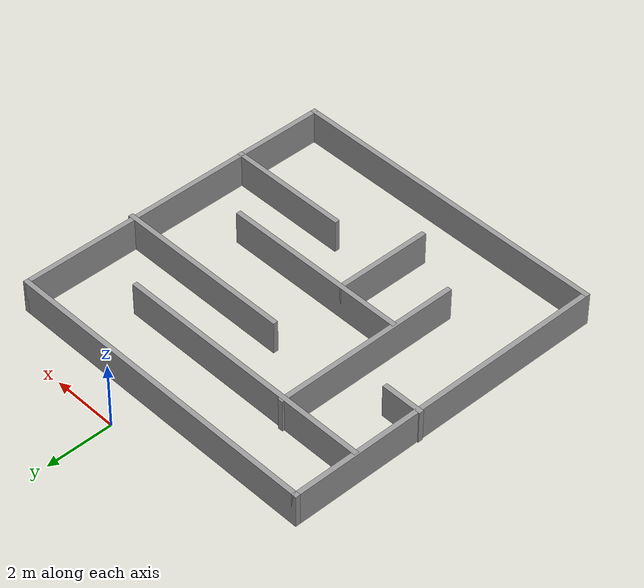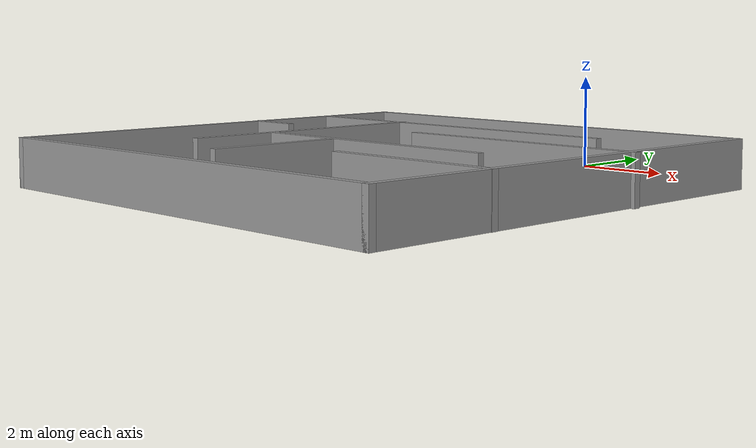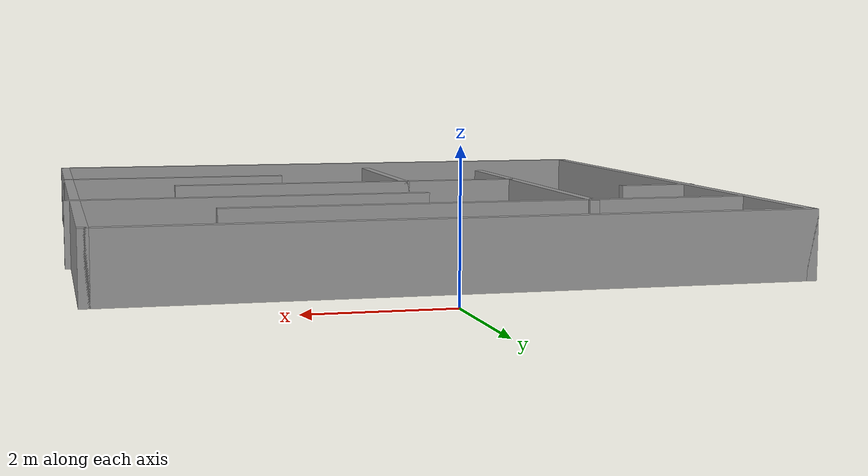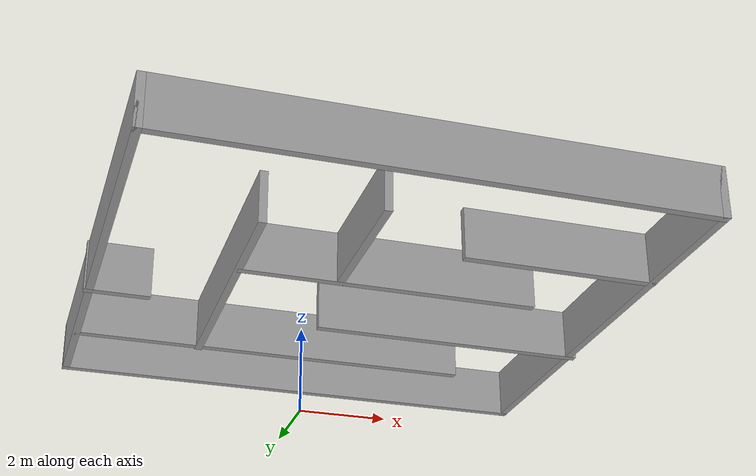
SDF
<?xml version='1.0'?>
<sdf version='1.6'>
  <model name='maze'>
    <pose frame=''>-0.406 -6.018 0 0 -0 0</pose>
    <link name='Wall_0'>
      <collision name='Wall_0_Collision'>
        <geometry>
          <box>
            <size>10 0.15 1</size>
          </box>
        </geometry>
        <pose frame=''>0 0 0.5 0 -0 0</pose>
      </collision>
      <visual name='Wall_0_Visual'>
        <pose frame=''>0 0 0.5 0 -0 0</pose>
        <geometry>
          <box>
            <size>10 0.15 1</size>
          </box>
        </geometry>
        <material>
          <script>
            <uri>file://media/materials/scripts/gazebo.material</uri>
            <name>Gazebo/Grey</name>
          </script>
          <ambient>1 1 1 1</ambient>
        </material>
        <meta>
          <layer>0</layer>
        </meta>
      </visual>
      <pose frame=''>-0.027 4.925 0 0 -0 0</pose>
    </link>
    <link name='Wall_13'>
      <collision name='Wall_13_Collision'>
        <geometry>
          <box>
            <size>5.5 0.15 1</size>
          </box>
        </geometry>
        <pose frame=''>0 0 0.5 0 -0 0</pose>
      </collision>
      <visual name='Wall_13_Visual'>
        <pose frame=''>0 0 0.5 0 -0 0</pose>
        <geometry>
          <box>
            <size>5.5 0.15 1</size>
          </box>
        </geometry>
        <material>
          <script>
            <uri>file://media/materials/scripts/gazebo.material</uri>
            <name>Gazebo/Grey</name>
          </script>
          <ambient>1 1 1 1</ambient>
        </material>
        <meta>
          <layer>0</layer>
        </meta>
      </visual>
      <pose frame=''>2.308 1.405 0 0 -0 3.14159</pose>
    </link>
    <link name='Wall_15'>
      <collision name='Wall_15_Collision'>
        <geometry>
          <box>
            <size>5.75 0.15 1</size>
          </box>
        </geometry>
        <pose frame=''>0 0 0.5 0 -0 0</pose>
      </collision>
      <visual name='Wall_15_Visual'>
        <pose frame=''>0 0 0.5 0 -0 0</pose>
        <geometry>
          <box>
            <size>5.75 0.15 1</size>
          </box>
        </geometry>
        <material>
          <script>
            <uri>file://media/materials/scripts/gazebo.material</uri>
            <name>Gazebo/Grey</name>
          </script>
          <ambient>1 1 1 1</ambient>
        </material>
        <meta>
          <layer>0</layer>
        </meta>
      </visual>
      <pose frame=''>-2.487 0.269 0 0 -0 -1.5708</pose>
    </link>
    <link name='Wall_17'>
      <collision name='Wall_17_Collision'>
        <geometry>
          <box>
            <size>5.75 0.15 1</size>
          </box>
        </geometry>
        <pose frame=''>0 0 0.5 0 -0 0</pose>
      </collision>
      <visual name='Wall_17_Visual'>
        <pose frame=''>0 0 0.5 0 -0 0</pose>
        <geometry>
          <box>
            <size>5.75 0.15 1</size>
          </box>
        </geometry>
        <material>
          <script>
            <uri>file://media/materials/scripts/gazebo.material</uri>
            <name>Gazebo/Grey</name>
          </script>
          <ambient>1 1 1 1</ambient>
        </material>
        <meta>
          <layer>0</layer>
        </meta>
      </visual>
      <pose frame=''>0.373 -0.682 0 0 -0 0</pose>
    </link>
    <link name='Wall_19'>
      <collision name='Wall_19_Collision'>
        <geometry>
          <box>
            <size>3 0.15 1</size>
          </box>
        </geometry>
        <pose frame=''>0 0 0.5 0 -0 0</pose>
      </collision>
      <visual name='Wall_19_Visual'>
        <pose frame=''>0 0 0.5 0 -0 0</pose>
        <geometry>
          <box>
            <size>3 0.15 1</size>
          </box>
        </geometry>
        <material>
          <script>
            <uri>file://media/materials/scripts/gazebo.material</uri>
            <name>Gazebo/Grey</name>
          </script>
          <ambient>1 1 1 1</ambient>
        </material>
        <meta>
          <layer>0</layer>
        </meta>
      </visual>
      <pose frame=''>-0.582 -2.107 0 0 -0 -1.5708</pose>
    </link>
    <link name='Wall_2'>
      <collision name='Wall_2_Collision'>
        <geometry>
          <box>
            <size>10 0.15 1</size>
          </box>
        </geometry>
        <pose frame=''>0 0 0.5 0 -0 0</pose>
      </collision>
      <visual name='Wall_2_Visual'>
        <pose frame=''>0 0 0.5 0 -0 0</pose>
        <geometry>
          <box>
            <size>10 0.15 1</size>
          </box>
        </geometry>
        <material>
          <script>
            <uri>file://media/materials/scripts/gazebo.material</uri>
            <name>Gazebo/Grey</name>
          </script>
          <ambient>1 1 1 1</ambient>
        </material>
        <meta>
          <layer>0</layer>
        </meta>
      </visual>
      <pose frame=''>4.898 0 0 0 -0 -1.5708</pose>
    </link>
    <link name='Wall_23'>
      <collision name='Wall_23_Collision'>
        <geometry>
          <box>
            <size>3.75 0.15 1</size>
          </box>
        </geometry>
        <pose frame=''>0 0 0.5 0 -0 0</pose>
      </collision>
      <visual name='Wall_23_Visual'>
        <pose frame=''>0 0 0.5 0 -0 0</pose>
        <geometry>
          <box>
            <size>3.75 0.15 1</size>
          </box>
        </geometry>
        <material>
          <script>
            <uri>file://media/materials/scripts/gazebo.material</uri>
            <name>Gazebo/Grey</name>
          </script>
          <ambient>1 1 1 1</ambient>
        </material>
        <meta>
          <layer>0</layer>
        </meta>
      </visual>
      <pose frame=''>3.108 -2.287 0 0 -0 3.14159</pose>
    </link>
    <link name='Wall_25'>
      <collision name='Wall_25_Collision'>
        <geometry>
          <box>
            <size>1.25 0.15 1</size>
          </box>
        </geometry>
        <pose frame=''>0 0 0.5 0 -0 0</pose>
      </collision>
      <visual name='Wall_25_Visual'>
        <pose frame=''>0 0 0.5 0 -0 0</pose>
        <geometry>
          <box>
            <size>1.25 0.15 1</size>
          </box>
        </geometry>
        <material>
          <script>
            <uri>file://media/materials/scripts/gazebo.material</uri>
            <name>Gazebo/Grey</name>
          </script>
          <ambient>1 1 1 1</ambient>
        </material>
        <meta>
          <layer>0</layer>
        </meta>
      </visual>
      <pose frame=''>-4.433 0.949 0 0 -0 0</pose>
    </link>
    <link name='Wall_5'>
      <collision name='Wall_5_Collision'>
        <geometry>
          <box>
            <size>10 0.15 1</size>
          </box>
        </geometry>
        <pose frame=''>0 0 0.5 0 -0 0</pose>
      </collision>
      <visual name='Wall_5_Visual'>
        <pose frame=''>0 0 0.5 0 -0 0</pose>
        <geometry>
          <box>
            <size>10 0.15 1</size>
          </box>
        </geometry>
        <material>
          <script>
            <uri>file://media/materials/scripts/gazebo.material</uri>
            <name>Gazebo/Grey</name>
          </script>
          <ambient>1 1 1 1</ambient>
        </material>
        <meta>
          <layer>0</layer>
        </meta>
      </visual>
      <pose frame=''>-4.952 0 0 0 -0 -1.5708</pose>
    </link>
    <link name='Wall_7'>
      <collision name='Wall_7_Collision'>
        <geometry>
          <box>
            <size>10 0.15 1</size>
          </box>
        </geometry>
        <pose frame=''>0 0 0.5 0 -0 0</pose>
      </collision>
      <visual name='Wall_7_Visual'>
        <pose frame=''>0 0 0.5 0 -0 0</pose>
        <geometry>
          <box>
            <size>10 0.15 1</size>
          </box>
        </geometry>
        <material>
          <script>
            <uri>file://media/materials/scripts/gazebo.material</uri>
            <name>Gazebo/Grey</name>
          </script>
          <ambient>1 1 1 1</ambient>
        </material>
        <meta>
          <layer>0</layer>
        </meta>
      </visual>
      <pose frame=''>-0.027 -4.925 0 0 -0 0</pose>
    </link>
    <link name='Wall_9'>
      <collision name='Wall_9_Collision'>
        <geometry>
          <box>
            <size>8 0.15 1</size>
          </box>
        </geometry>
        <pose frame=''>0 0 0.5 0 -0 0</pose>
      </collision>
      <visual name='Wall_9_Visual'>
        <pose frame=''>0 0 0.5 0 -0 0</pose>
        <geometry>
          <box>
            <size>8 0.15 1</size>
          </box>
        </geometry>
        <material>
          <script>
            <uri>file://media/materials/scripts/gazebo.material</uri>
            <name>Gazebo/Grey</name>
          </script>
          <ambient>1 1 1 1</ambient>
        </material>
        <meta>
          <layer>0</layer>
        </meta>
      </visual>
      <pose frame=''>-0.982 3.008 0 0 -0 0</pose>
    </link>
    <static>1</static>
  </model>
</sdf>
